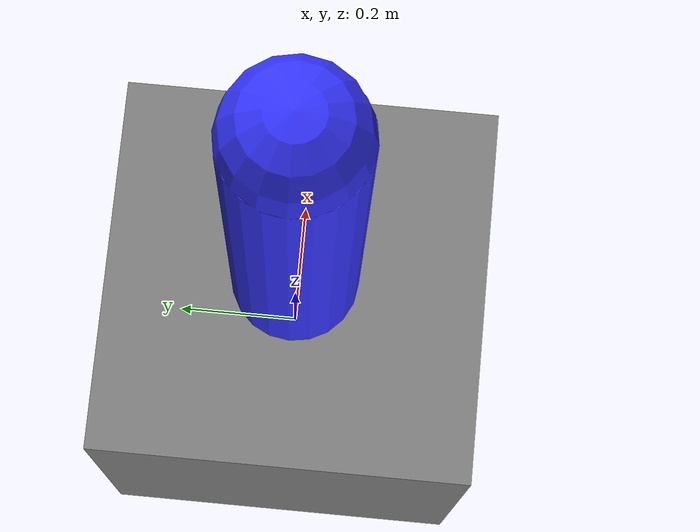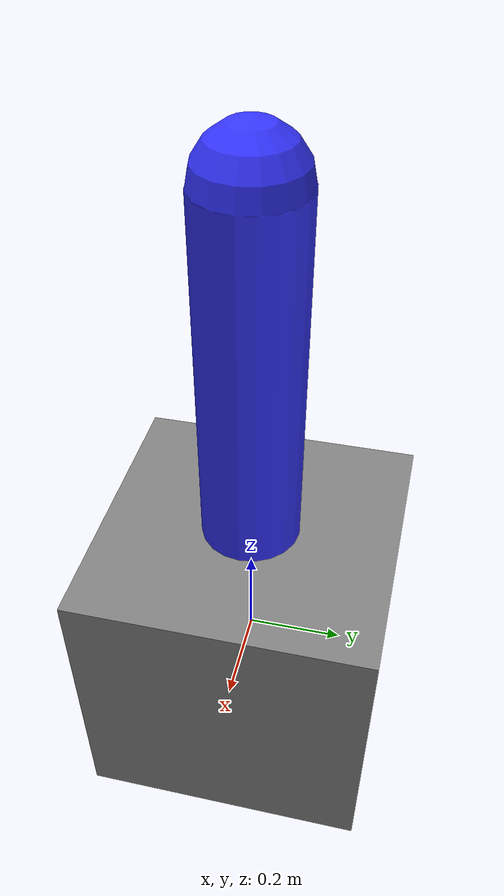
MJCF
<mujoco>
  <option gravity="0 0 -9.81"/>
  <worldbody>
    <!-- Skater -->
    <body name="object_1" pos="0 0 1">
      <geom type="capsule" fromto="0 0 0 0 0 -1" size="0.1" rgba="0.2 0.2 1 1"/>
      <joint name="object_1_joint" type="free"/>
    </body>
    <!-- Support (for visual reference) -->
    <body name="object_2" pos="0 0 0">
      <geom type="box" size="0.3 0.3 0.3" rgba="0.5 0.5 0.5 1"/>
    </body>
  </worldbody>
</mujoco>
